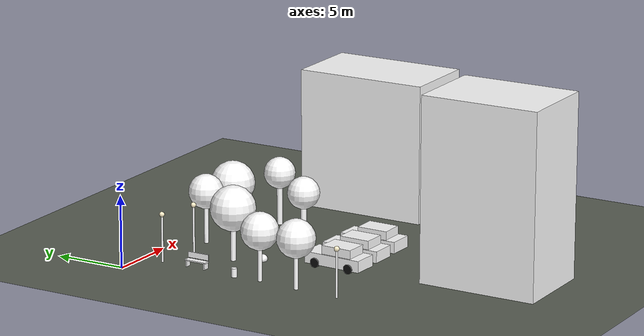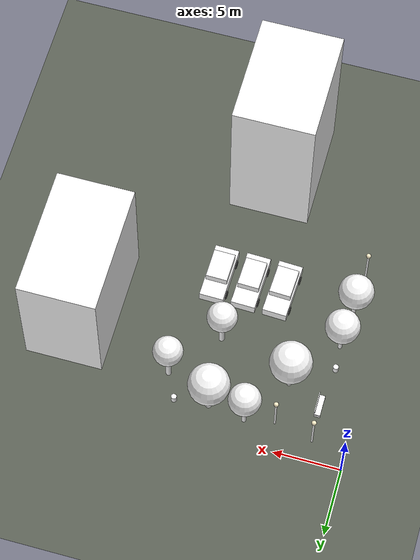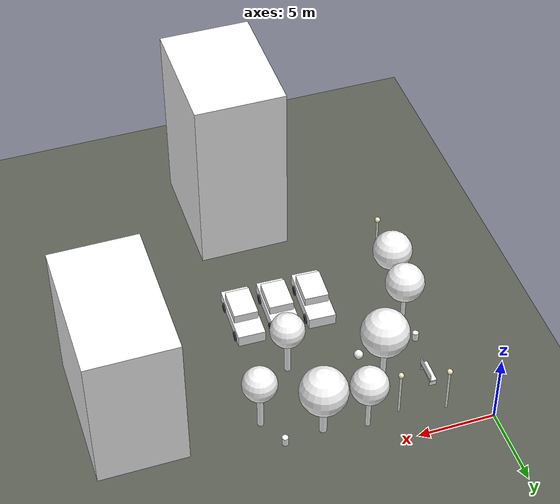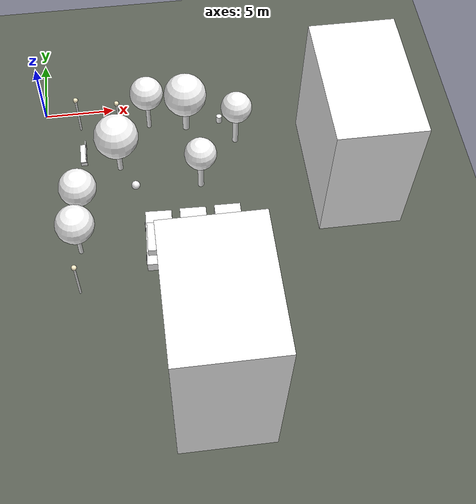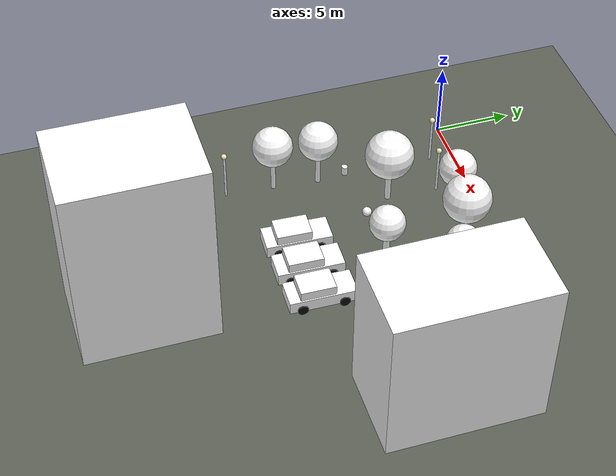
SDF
<sdf version="1.9">
 <world name="park_0">
  <model name="ground_plane">
   <static>true</static>
   <link name="link">
    <collision name="collision">
     <geometry><plane><normal>0 0 1</normal><size>300.000 300.000</size></plane></geometry>
     <surface><friction><ode><mu>1.0</mu><mu2>1.0</mu2></ode></friction></surface>
    </collision>
    <visual name="visual">
     <geometry><plane><normal>0 0 1</normal><size>300.000 300.000</size></plane></geometry>
     <material>
      <ambient>0.350 0.370 0.330 1</ambient>
      <diffuse>0.350 0.370 0.330 1</diffuse>
      <specular>0.08 0.08 0.08 1</specular>
     </material>
    </visual>
   </link>
  </model>
  <model name="building_8">
   <static>true</static>
   <pose>10.240 -22.632 0.000 0.0000 0.0000 0.0000</pose>
   <link name="link">
    <collision name="c0">
     <pose>0.000 0.000 6.358 0.0000 0.0000 0.0000</pose>
     <geometry><box><size>6.011 8.263 12.717</size></box></geometry>
    </collision>
    <visual name="v0">
     <pose>0.000 0.000 6.358 0.0000 0.0000 0.0000</pose>
     <geometry><box><size>6.011 8.263 12.717</size></box></geometry>
     <material>
      <ambient>1.000 1.000 1.000 1</ambient>
      <diffuse>1.000 1.000 1.000 1</diffuse>
      <specular>0.08 0.08 0.08 1</specular>
      <pbr>
       <metal>
        <albedo_map>model://omnivla_textures/materials/textures/facade_red.png</albedo_map>
        <roughness>0.85</roughness>
        <metalness>0.0</metalness>
       </metal>
      </pbr>
     </material>
    </visual>
   </link>
  </model>
  <model name="building_9">
   <static>true</static>
   <pose>21.351 -7.581 0.000 0.0000 0.0000 1.5708</pose>
   <link name="link">
    <collision name="c0">
     <pose>0.000 0.000 4.937 0.0000 0.0000 0.0000</pose>
     <geometry><box><size>9.453 5.703 9.873</size></box></geometry>
    </collision>
    <visual name="v0">
     <pose>0.000 0.000 4.937 0.0000 0.0000 0.0000</pose>
     <geometry><box><size>9.453 5.703 9.873</size></box></geometry>
     <material>
      <ambient>1.000 1.000 1.000 1</ambient>
      <diffuse>1.000 1.000 1.000 1</diffuse>
      <specular>0.08 0.08 0.08 1</specular>
      <pbr>
       <metal>
        <albedo_map>model://omnivla_textures/materials/textures/facade_beige.png</albedo_map>
        <roughness>0.85</roughness>
        <metalness>0.0</metalness>
       </metal>
      </pbr>
     </material>
    </visual>
   </link>
  </model>
  <model name="car_19">
   <static>true</static>
   <pose>7.500 -12.250 0.000 0.0000 0.0000 1.5260</pose>
   <link name="link">
    <collision name="c0">
     <pose>0.000 0.000 0.600 0.0000 0.0000 0.0000</pose>
     <geometry><box><size>4.200 1.800 0.800</size></box></geometry>
    </collision>
    <visual name="v0">
     <pose>0.000 0.000 0.600 0.0000 0.0000 0.0000</pose>
     <geometry><box><size>4.200 1.800 0.800</size></box></geometry>
     <material>
      <ambient>1.000 1.000 1.000 1</ambient>
      <diffuse>1.000 1.000 1.000 1</diffuse>
      <specular>0.08 0.08 0.08 1</specular>
      <pbr>
       <metal>
        <albedo_map>model://omnivla_textures/materials/textures/car_black.png</albedo_map>
        <roughness>0.4</roughness>
        <metalness>0.3</metalness>
       </metal>
      </pbr>
     </material>
    </visual>
    <collision name="c1">
     <pose>-0.300 0.000 1.300 0.0000 0.0000 0.0000</pose>
     <geometry><box><size>2.200 1.600 0.600</size></box></geometry>
    </collision>
    <visual name="v1">
     <pose>-0.300 0.000 1.300 0.0000 0.0000 0.0000</pose>
     <geometry><box><size>2.200 1.600 0.600</size></box></geometry>
     <material>
      <ambient>1.000 1.000 1.000 1</ambient>
      <diffuse>1.000 1.000 1.000 1</diffuse>
      <specular>0.08 0.08 0.08 1</specular>
      <pbr>
       <metal>
        <albedo_map>model://omnivla_textures/materials/textures/car_black.png</albedo_map>
        <roughness>0.4</roughness>
        <metalness>0.3</metalness>
       </metal>
      </pbr>
     </material>
    </visual>
    <collision name="c2">
     <pose>1.300 0.850 0.330 1.5708 0.0000 0.0000</pose>
     <geometry><cylinder><radius>0.330</radius><length>0.250</length></cylinder></geometry>
    </collision>
    <visual name="v2">
     <pose>1.300 0.850 0.330 1.5708 0.0000 0.0000</pose>
     <geometry><cylinder><radius>0.330</radius><length>0.250</length></cylinder></geometry>
     <material>
      <ambient>0.050 0.050 0.050 1</ambient>
      <diffuse>0.050 0.050 0.050 1</diffuse>
      <specular>0.08 0.08 0.08 1</specular>
     </material>
    </visual>
    <collision name="c3">
     <pose>1.300 -0.850 0.330 1.5708 0.0000 0.0000</pose>
     <geometry><cylinder><radius>0.330</radius><length>0.250</length></cylinder></geometry>
    </collision>
    <visual name="v3">
     <pose>1.300 -0.850 0.330 1.5708 0.0000 0.0000</pose>
     <geometry><cylinder><radius>0.330</radius><length>0.250</length></cylinder></geometry>
     <material>
      <ambient>0.050 0.050 0.050 1</ambient>
      <diffuse>0.050 0.050 0.050 1</diffuse>
      <specular>0.08 0.08 0.08 1</specular>
     </material>
    </visual>
    <collision name="c4">
     <pose>-1.300 0.850 0.330 1.5708 0.0000 0.0000</pose>
     <geometry><cylinder><radius>0.330</radius><length>0.250</length></cylinder></geometry>
    </collision>
    <visual name="v4">
     <pose>-1.300 0.850 0.330 1.5708 0.0000 0.0000</pose>
     <geometry><cylinder><radius>0.330</radius><length>0.250</length></cylinder></geometry>
     <material>
      <ambient>0.050 0.050 0.050 1</ambient>
      <diffuse>0.050 0.050 0.050 1</diffuse>
      <specular>0.08 0.08 0.08 1</specular>
     </material>
    </visual>
    <collision name="c5">
     <pose>-1.300 -0.850 0.330 1.5708 0.0000 0.0000</pose>
     <geometry><cylinder><radius>0.330</radius><length>0.250</length></cylinder></geometry>
    </collision>
    <visual name="v5">
     <pose>-1.300 -0.850 0.330 1.5708 0.0000 0.0000</pose>
     <geometry><cylinder><radius>0.330</radius><length>0.250</length></cylinder></geometry>
     <material>
      <ambient>0.050 0.050 0.050 1</ambient>
      <diffuse>0.050 0.050 0.050 1</diffuse>
      <specular>0.08 0.08 0.08 1</specular>
     </material>
    </visual>
   </link>
  </model>
  <model name="car_20">
   <static>true</static>
   <pose>9.900 -12.250 0.000 0.0000 0.0000 1.5406</pose>
   <link name="link">
    <collision name="c0">
     <pose>0.000 0.000 0.600 0.0000 0.0000 0.0000</pose>
     <geometry><box><size>4.200 1.800 0.800</size></box></geometry>
    </collision>
    <visual name="v0">
     <pose>0.000 0.000 0.600 0.0000 0.0000 0.0000</pose>
     <geometry><box><size>4.200 1.800 0.800</size></box></geometry>
     <material>
      <ambient>1.000 1.000 1.000 1</ambient>
      <diffuse>1.000 1.000 1.000 1</diffuse>
      <specular>0.08 0.08 0.08 1</specular>
      <pbr>
       <metal>
        <albedo_map>model://omnivla_textures/materials/textures/car_yellow.png</albedo_map>
        <roughness>0.4</roughness>
        <metalness>0.3</metalness>
       </metal>
      </pbr>
     </material>
    </visual>
    <collision name="c1">
     <pose>-0.300 0.000 1.300 0.0000 0.0000 0.0000</pose>
     <geometry><box><size>2.200 1.600 0.600</size></box></geometry>
    </collision>
    <visual name="v1">
     <pose>-0.300 0.000 1.300 0.0000 0.0000 0.0000</pose>
     <geometry><box><size>2.200 1.600 0.600</size></box></geometry>
     <material>
      <ambient>1.000 1.000 1.000 1</ambient>
      <diffuse>1.000 1.000 1.000 1</diffuse>
      <specular>0.08 0.08 0.08 1</specular>
      <pbr>
       <metal>
        <albedo_map>model://omnivla_textures/materials/textures/car_yellow.png</albedo_map>
        <roughness>0.4</roughness>
        <metalness>0.3</metalness>
       </metal>
      </pbr>
     </material>
    </visual>
    <collision name="c2">
     <pose>1.300 0.850 0.330 1.5708 0.0000 0.0000</pose>
     <geometry><cylinder><radius>0.330</radius><length>0.250</length></cylinder></geometry>
    </collision>
    <visual name="v2">
     <pose>1.300 0.850 0.330 1.5708 0.0000 0.0000</pose>
     <geometry><cylinder><radius>0.330</radius><length>0.250</length></cylinder></geometry>
     <material>
      <ambient>0.050 0.050 0.050 1</ambient>
      <diffuse>0.050 0.050 0.050 1</diffuse>
      <specular>0.08 0.08 0.08 1</specular>
     </material>
    </visual>
    <collision name="c3">
     <pose>1.300 -0.850 0.330 1.5708 0.0000 0.0000</pose>
     <geometry><cylinder><radius>0.330</radius><length>0.250</length></cylinder></geometry>
    </collision>
    <visual name="v3">
     <pose>1.300 -0.850 0.330 1.5708 0.0000 0.0000</pose>
     <geometry><cylinder><radius>0.330</radius><length>0.250</length></cylinder></geometry>
     <material>
      <ambient>0.050 0.050 0.050 1</ambient>
      <diffuse>0.050 0.050 0.050 1</diffuse>
      <specular>0.08 0.08 0.08 1</specular>
     </material>
    </visual>
    <collision name="c4">
     <pose>-1.300 0.850 0.330 1.5708 0.0000 0.0000</pose>
     <geometry><cylinder><radius>0.330</radius><length>0.250</length></cylinder></geometry>
    </collision>
    <visual name="v4">
     <pose>-1.300 0.850 0.330 1.5708 0.0000 0.0000</pose>
     <geometry><cylinder><radius>0.330</radius><length>0.250</length></cylinder></geometry>
     <material>
      <ambient>0.050 0.050 0.050 1</ambient>
      <diffuse>0.050 0.050 0.050 1</diffuse>
      <specular>0.08 0.08 0.08 1</specular>
     </material>
    </visual>
    <collision name="c5">
     <pose>-1.300 -0.850 0.330 1.5708 0.0000 0.0000</pose>
     <geometry><cylinder><radius>0.330</radius><length>0.250</length></cylinder></geometry>
    </collision>
    <visual name="v5">
     <pose>-1.300 -0.850 0.330 1.5708 0.0000 0.0000</pose>
     <geometry><cylinder><radius>0.330</radius><length>0.250</length></cylinder></geometry>
     <material>
      <ambient>0.050 0.050 0.050 1</ambient>
      <diffuse>0.050 0.050 0.050 1</diffuse>
      <specular>0.08 0.08 0.08 1</specular>
     </material>
    </visual>
   </link>
  </model>
  <model name="car_21">
   <static>true</static>
   <pose>12.300 -12.250 0.000 0.0000 0.0000 1.5507</pose>
   <link name="link">
    <collision name="c0">
     <pose>0.000 0.000 0.600 0.0000 0.0000 0.0000</pose>
     <geometry><box><size>4.200 1.800 0.800</size></box></geometry>
    </collision>
    <visual name="v0">
     <pose>0.000 0.000 0.600 0.0000 0.0000 0.0000</pose>
     <geometry><box><size>4.200 1.800 0.800</size></box></geometry>
     <material>
      <ambient>1.000 1.000 1.000 1</ambient>
      <diffuse>1.000 1.000 1.000 1</diffuse>
      <specular>0.08 0.08 0.08 1</specular>
      <pbr>
       <metal>
        <albedo_map>model://omnivla_textures/materials/textures/car_red.png</albedo_map>
        <roughness>0.4</roughness>
        <metalness>0.3</metalness>
       </metal>
      </pbr>
     </material>
    </visual>
    <collision name="c1">
     <pose>-0.300 0.000 1.300 0.0000 0.0000 0.0000</pose>
     <geometry><box><size>2.200 1.600 0.600</size></box></geometry>
    </collision>
    <visual name="v1">
     <pose>-0.300 0.000 1.300 0.0000 0.0000 0.0000</pose>
     <geometry><box><size>2.200 1.600 0.600</size></box></geometry>
     <material>
      <ambient>1.000 1.000 1.000 1</ambient>
      <diffuse>1.000 1.000 1.000 1</diffuse>
      <specular>0.08 0.08 0.08 1</specular>
      <pbr>
       <metal>
        <albedo_map>model://omnivla_textures/materials/textures/car_red.png</albedo_map>
        <roughness>0.4</roughness>
        <metalness>0.3</metalness>
       </metal>
      </pbr>
     </material>
    </visual>
    <collision name="c2">
     <pose>1.300 0.850 0.330 1.5708 0.0000 0.0000</pose>
     <geometry><cylinder><radius>0.330</radius><length>0.250</length></cylinder></geometry>
    </collision>
    <visual name="v2">
     <pose>1.300 0.850 0.330 1.5708 0.0000 0.0000</pose>
     <geometry><cylinder><radius>0.330</radius><length>0.250</length></cylinder></geometry>
     <material>
      <ambient>0.050 0.050 0.050 1</ambient>
      <diffuse>0.050 0.050 0.050 1</diffuse>
      <specular>0.08 0.08 0.08 1</specular>
     </material>
    </visual>
    <collision name="c3">
     <pose>1.300 -0.850 0.330 1.5708 0.0000 0.0000</pose>
     <geometry><cylinder><radius>0.330</radius><length>0.250</length></cylinder></geometry>
    </collision>
    <visual name="v3">
     <pose>1.300 -0.850 0.330 1.5708 0.0000 0.0000</pose>
     <geometry><cylinder><radius>0.330</radius><length>0.250</length></cylinder></geometry>
     <material>
      <ambient>0.050 0.050 0.050 1</ambient>
      <diffuse>0.050 0.050 0.050 1</diffuse>
      <specular>0.08 0.08 0.08 1</specular>
     </material>
    </visual>
    <collision name="c4">
     <pose>-1.300 0.850 0.330 1.5708 0.0000 0.0000</pose>
     <geometry><cylinder><radius>0.330</radius><length>0.250</length></cylinder></geometry>
    </collision>
    <visual name="v4">
     <pose>-1.300 0.850 0.330 1.5708 0.0000 0.0000</pose>
     <geometry><cylinder><radius>0.330</radius><length>0.250</length></cylinder></geometry>
     <material>
      <ambient>0.050 0.050 0.050 1</ambient>
      <diffuse>0.050 0.050 0.050 1</diffuse>
      <specular>0.08 0.08 0.08 1</specular>
     </material>
    </visual>
    <collision name="c5">
     <pose>-1.300 -0.850 0.330 1.5708 0.0000 0.0000</pose>
     <geometry><cylinder><radius>0.330</radius><length>0.250</length></cylinder></geometry>
    </collision>
    <visual name="v5">
     <pose>-1.300 -0.850 0.330 1.5708 0.0000 0.0000</pose>
     <geometry><cylinder><radius>0.330</radius><length>0.250</length></cylinder></geometry>
     <material>
      <ambient>0.050 0.050 0.050 1</ambient>
      <diffuse>0.050 0.050 0.050 1</diffuse>
      <specular>0.08 0.08 0.08 1</specular>
     </material>
    </visual>
   </link>
  </model>
  <model name="tree_34">
   <static>true</static>
   <pose>13.772 -3.918 0.000 0.0000 0.0000 0.3306</pose>
   <link name="link">
    <collision name="c0">
     <pose>0.000 0.000 1.524 0.0000 0.0000 0.0000</pose>
     <geometry><cylinder><radius>0.199</radius><length>3.048</length></cylinder></geometry>
    </collision>
    <visual name="v0">
     <pose>0.000 0.000 1.524 0.0000 0.0000 0.0000</pose>
     <geometry><cylinder><radius>0.199</radius><length>3.048</length></cylinder></geometry>
     <material>
      <ambient>1.000 1.000 1.000 1</ambient>
      <diffuse>1.000 1.000 1.000 1</diffuse>
      <specular>0.08 0.08 0.08 1</specular>
      <pbr>
       <metal>
        <albedo_map>model://omnivla_textures/materials/textures/bark.png</albedo_map>
        <roughness>0.85</roughness>
        <metalness>0.0</metalness>
       </metal>
      </pbr>
     </material>
    </visual>
    <visual name="v1">
     <pose>0.000 0.000 3.709 0.0000 0.0000 0.0000</pose>
     <geometry><sphere><radius>1.102</radius></sphere></geometry>
     <material>
      <ambient>1.000 1.000 1.000 1</ambient>
      <diffuse>1.000 1.000 1.000 1</diffuse>
      <specular>0.08 0.08 0.08 1</specular>
      <pbr>
       <metal>
        <albedo_map>model://omnivla_textures/materials/textures/leaves.png</albedo_map>
        <roughness>0.85</roughness>
        <metalness>0.0</metalness>
       </metal>
      </pbr>
     </material>
    </visual>
   </link>
  </model>
  <model name="tree_41">
   <static>true</static>
   <pose>10.821 -7.586 0.000 0.0000 0.0000 -2.2541</pose>
   <link name="link">
    <collision name="c0">
     <pose>0.000 0.000 1.457 0.0000 0.0000 0.0000</pose>
     <geometry><cylinder><radius>0.207</radius><length>2.915</length></cylinder></geometry>
    </collision>
    <visual name="v0">
     <pose>0.000 0.000 1.457 0.0000 0.0000 0.0000</pose>
     <geometry><cylinder><radius>0.207</radius><length>2.915</length></cylinder></geometry>
     <material>
      <ambient>1.000 1.000 1.000 1</ambient>
      <diffuse>1.000 1.000 1.000 1</diffuse>
      <specular>0.08 0.08 0.08 1</specular>
      <pbr>
       <metal>
        <albedo_map>model://omnivla_textures/materials/textures/bark.png</albedo_map>
        <roughness>0.85</roughness>
        <metalness>0.0</metalness>
       </metal>
      </pbr>
     </material>
    </visual>
    <visual name="v1">
     <pose>0.000 0.000 3.585 0.0000 0.0000 0.0000</pose>
     <geometry><sphere><radius>1.117</radius></sphere></geometry>
     <material>
      <ambient>1.000 1.000 1.000 1</ambient>
      <diffuse>1.000 1.000 1.000 1</diffuse>
      <specular>0.08 0.08 0.08 1</specular>
      <pbr>
       <metal>
        <albedo_map>model://omnivla_textures/materials/textures/leaves.png</albedo_map>
        <roughness>0.85</roughness>
        <metalness>0.0</metalness>
       </metal>
      </pbr>
     </material>
    </visual>
   </link>
  </model>
  <model name="tree_49">
   <static>true</static>
   <pose>5.212 -5.459 0.000 0.0000 0.0000 1.3250</pose>
   <link name="link">
    <collision name="c0">
     <pose>0.000 0.000 1.354 0.0000 0.0000 0.0000</pose>
     <geometry><cylinder><radius>0.186</radius><length>2.707</length></cylinder></geometry>
    </collision>
    <visual name="v0">
     <pose>0.000 0.000 1.354 0.0000 0.0000 0.0000</pose>
     <geometry><cylinder><radius>0.186</radius><length>2.707</length></cylinder></geometry>
     <material>
      <ambient>1.000 1.000 1.000 1</ambient>
      <diffuse>1.000 1.000 1.000 1</diffuse>
      <specular>0.08 0.08 0.08 1</specular>
      <pbr>
       <metal>
        <albedo_map>model://omnivla_textures/materials/textures/bark.png</albedo_map>
        <roughness>0.85</roughness>
        <metalness>0.0</metalness>
       </metal>
      </pbr>
     </material>
    </visual>
    <visual name="v1">
     <pose>0.000 0.000 3.639 0.0000 0.0000 0.0000</pose>
     <geometry><sphere><radius>1.553</radius></sphere></geometry>
     <material>
      <ambient>1.000 1.000 1.000 1</ambient>
      <diffuse>1.000 1.000 1.000 1</diffuse>
      <specular>0.08 0.08 0.08 1</specular>
      <pbr>
       <metal>
        <albedo_map>model://omnivla_textures/materials/textures/leaves.png</albedo_map>
        <roughness>0.85</roughness>
        <metalness>0.0</metalness>
       </metal>
      </pbr>
     </material>
    </visual>
   </link>
  </model>
  <model name="tree_57">
   <static>true</static>
   <pose>10.314 -2.277 0.000 0.0000 0.0000 3.0140</pose>
   <link name="link">
    <collision name="c0">
     <pose>0.000 0.000 1.352 0.0000 0.0000 0.0000</pose>
     <geometry><cylinder><radius>0.237</radius><length>2.704</length></cylinder></geometry>
    </collision>
    <visual name="v0">
     <pose>0.000 0.000 1.352 0.0000 0.0000 0.0000</pose>
     <geometry><cylinder><radius>0.237</radius><length>2.704</length></cylinder></geometry>
     <material>
      <ambient>1.000 1.000 1.000 1</ambient>
      <diffuse>1.000 1.000 1.000 1</diffuse>
      <specular>0.08 0.08 0.08 1</specular>
      <pbr>
       <metal>
        <albedo_map>model://omnivla_textures/materials/textures/bark.png</albedo_map>
        <roughness>0.85</roughness>
        <metalness>0.0</metalness>
       </metal>
      </pbr>
     </material>
    </visual>
    <visual name="v1">
     <pose>0.000 0.000 3.620 0.0000 0.0000 0.0000</pose>
     <geometry><sphere><radius>1.527</radius></sphere></geometry>
     <material>
      <ambient>1.000 1.000 1.000 1</ambient>
      <diffuse>1.000 1.000 1.000 1</diffuse>
      <specular>0.08 0.08 0.08 1</specular>
      <pbr>
       <metal>
        <albedo_map>model://omnivla_textures/materials/textures/leaves.png</albedo_map>
        <roughness>0.85</roughness>
        <metalness>0.0</metalness>
       </metal>
      </pbr>
     </material>
    </visual>
   </link>
  </model>
  <model name="tree_59">
   <static>true</static>
   <pose>2.121 -12.185 0.000 0.0000 0.0000 -0.6825</pose>
   <link name="link">
    <collision name="c0">
     <pose>0.000 0.000 1.338 0.0000 0.0000 0.0000</pose>
     <geometry><cylinder><radius>0.147</radius><length>2.676</length></cylinder></geometry>
    </collision>
    <visual name="v0">
     <pose>0.000 0.000 1.338 0.0000 0.0000 0.0000</pose>
     <geometry><cylinder><radius>0.147</radius><length>2.676</length></cylinder></geometry>
     <material>
      <ambient>1.000 1.000 1.000 1</ambient>
      <diffuse>1.000 1.000 1.000 1</diffuse>
      <specular>0.08 0.08 0.08 1</specular>
      <pbr>
       <metal>
        <albedo_map>model://omnivla_textures/materials/textures/bark.png</albedo_map>
        <roughness>0.85</roughness>
        <metalness>0.0</metalness>
       </metal>
      </pbr>
     </material>
    </visual>
    <visual name="v1">
     <pose>0.000 0.000 3.456 0.0000 0.0000 0.0000</pose>
     <geometry><sphere><radius>1.300</radius></sphere></geometry>
     <material>
      <ambient>1.000 1.000 1.000 1</ambient>
      <diffuse>1.000 1.000 1.000 1</diffuse>
      <specular>0.08 0.08 0.08 1</specular>
      <pbr>
       <metal>
        <albedo_map>model://omnivla_textures/materials/textures/leaves.png</albedo_map>
        <roughness>0.85</roughness>
        <metalness>0.0</metalness>
       </metal>
      </pbr>
     </material>
    </visual>
   </link>
  </model>
  <model name="tree_63">
   <static>true</static>
   <pose>7.591 -1.823 0.000 0.0000 0.0000 0.5553</pose>
   <link name="link">
    <collision name="c0">
     <pose>0.000 0.000 1.463 0.0000 0.0000 0.0000</pose>
     <geometry><cylinder><radius>0.153</radius><length>2.926</length></cylinder></geometry>
    </collision>
    <visual name="v0">
     <pose>0.000 0.000 1.463 0.0000 0.0000 0.0000</pose>
     <geometry><cylinder><radius>0.153</radius><length>2.926</length></cylinder></geometry>
     <material>
      <ambient>1.000 1.000 1.000 1</ambient>
      <diffuse>1.000 1.000 1.000 1</diffuse>
      <specular>0.08 0.08 0.08 1</specular>
      <pbr>
       <metal>
        <albedo_map>model://omnivla_textures/materials/textures/bark.png</albedo_map>
        <roughness>0.85</roughness>
        <metalness>0.0</metalness>
       </metal>
      </pbr>
     </material>
    </visual>
    <visual name="v1">
     <pose>0.000 0.000 3.644 0.0000 0.0000 0.0000</pose>
     <geometry><sphere><radius>1.196</radius></sphere></geometry>
     <material>
      <ambient>1.000 1.000 1.000 1</ambient>
      <diffuse>1.000 1.000 1.000 1</diffuse>
      <specular>0.08 0.08 0.08 1</specular>
      <pbr>
       <metal>
        <albedo_map>model://omnivla_textures/materials/textures/leaves.png</albedo_map>
        <roughness>0.85</roughness>
        <metalness>0.0</metalness>
       </metal>
      </pbr>
     </material>
    </visual>
   </link>
  </model>
  <model name="tree_72">
   <static>true</static>
   <pose>2.399 -9.267 0.000 0.0000 0.0000 2.9879</pose>
   <link name="link">
    <collision name="c0">
     <pose>0.000 0.000 1.326 0.0000 0.0000 0.0000</pose>
     <geometry><cylinder><radius>0.151</radius><length>2.652</length></cylinder></geometry>
    </collision>
    <visual name="v0">
     <pose>0.000 0.000 1.326 0.0000 0.0000 0.0000</pose>
     <geometry><cylinder><radius>0.151</radius><length>2.652</length></cylinder></geometry>
     <material>
      <ambient>1.000 1.000 1.000 1</ambient>
      <diffuse>1.000 1.000 1.000 1</diffuse>
      <specular>0.08 0.08 0.08 1</specular>
      <pbr>
       <metal>
        <albedo_map>model://omnivla_textures/materials/textures/bark.png</albedo_map>
        <roughness>0.85</roughness>
        <metalness>0.0</metalness>
       </metal>
      </pbr>
     </material>
    </visual>
    <visual name="v1">
     <pose>0.000 0.000 3.418 0.0000 0.0000 0.0000</pose>
     <geometry><sphere><radius>1.276</radius></sphere></geometry>
     <material>
      <ambient>1.000 1.000 1.000 1</ambient>
      <diffuse>1.000 1.000 1.000 1</diffuse>
      <specular>0.08 0.08 0.08 1</specular>
      <pbr>
       <metal>
        <albedo_map>model://omnivla_textures/materials/textures/leaves.png</albedo_map>
        <roughness>0.85</roughness>
        <metalness>0.0</metalness>
       </metal>
      </pbr>
     </material>
    </visual>
   </link>
  </model>
  <model name="bench_89">
   <static>true</static>
   <pose>2.649 -4.198 0.000 0.0000 0.0000 1.5708</pose>
   <link name="link">
    <collision name="c0">
     <pose>0.000 0.000 0.450 0.0000 0.0000 0.0000</pose>
     <geometry><box><size>1.600 0.450 0.080</size></box></geometry>
    </collision>
    <visual name="v0">
     <pose>0.000 0.000 0.450 0.0000 0.0000 0.0000</pose>
     <geometry><box><size>1.600 0.450 0.080</size></box></geometry>
     <material>
      <ambient>1.000 1.000 1.000 1</ambient>
      <diffuse>1.000 1.000 1.000 1</diffuse>
      <specular>0.08 0.08 0.08 1</specular>
      <pbr>
       <metal>
        <albedo_map>model://omnivla_textures/materials/textures/wood_floor.png</albedo_map>
        <roughness>0.85</roughness>
        <metalness>0.0</metalness>
       </metal>
      </pbr>
     </material>
    </visual>
    <collision name="c1">
     <pose>0.000 -0.200 0.750 0.0000 0.0000 0.0000</pose>
     <geometry><box><size>1.600 0.060 0.400</size></box></geometry>
    </collision>
    <visual name="v1">
     <pose>0.000 -0.200 0.750 0.0000 0.0000 0.0000</pose>
     <geometry><box><size>1.600 0.060 0.400</size></box></geometry>
     <material>
      <ambient>1.000 1.000 1.000 1</ambient>
      <diffuse>1.000 1.000 1.000 1</diffuse>
      <specular>0.08 0.08 0.08 1</specular>
      <pbr>
       <metal>
        <albedo_map>model://omnivla_textures/materials/textures/wood_floor.png</albedo_map>
        <roughness>0.85</roughness>
        <metalness>0.0</metalness>
       </metal>
      </pbr>
     </material>
    </visual>
    <collision name="c2">
     <pose>0.700 0.000 0.225 0.0000 0.0000 0.0000</pose>
     <geometry><box><size>0.080 0.450 0.450</size></box></geometry>
    </collision>
    <visual name="v2">
     <pose>0.700 0.000 0.225 0.0000 0.0000 0.0000</pose>
     <geometry><box><size>0.080 0.450 0.450</size></box></geometry>
     <material>
      <ambient>1.000 1.000 1.000 1</ambient>
      <diffuse>1.000 1.000 1.000 1</diffuse>
      <specular>0.08 0.08 0.08 1</specular>
      <pbr>
       <metal>
        <albedo_map>model://omnivla_textures/materials/textures/metal.png</albedo_map>
        <roughness>0.85</roughness>
        <metalness>0.0</metalness>
       </metal>
      </pbr>
     </material>
    </visual>
    <collision name="c3">
     <pose>-0.700 0.000 0.225 0.0000 0.0000 0.0000</pose>
     <geometry><box><size>0.080 0.450 0.450</size></box></geometry>
    </collision>
    <visual name="v3">
     <pose>-0.700 0.000 0.225 0.0000 0.0000 0.0000</pose>
     <geometry><box><size>0.080 0.450 0.450</size></box></geometry>
     <material>
      <ambient>1.000 1.000 1.000 1</ambient>
      <diffuse>1.000 1.000 1.000 1</diffuse>
      <specular>0.08 0.08 0.08 1</specular>
      <pbr>
       <metal>
        <albedo_map>model://omnivla_textures/materials/textures/metal.png</albedo_map>
        <roughness>0.85</roughness>
        <metalness>0.0</metalness>
       </metal>
      </pbr>
     </material>
    </visual>
   </link>
  </model>
  <model name="lamp_120">
   <static>true</static>
   <pose>5.415 -2.203 0.000 0.0000 0.0000 0.0000</pose>
   <link name="link">
    <collision name="c0">
     <pose>0.000 0.000 1.600 0.0000 0.0000 0.0000</pose>
     <geometry><cylinder><radius>0.070</radius><length>3.200</length></cylinder></geometry>
    </collision>
    <visual name="v0">
     <pose>0.000 0.000 1.600 0.0000 0.0000 0.0000</pose>
     <geometry><cylinder><radius>0.070</radius><length>3.200</length></cylinder></geometry>
     <material>
      <ambient>1.000 1.000 1.000 1</ambient>
      <diffuse>1.000 1.000 1.000 1</diffuse>
      <specular>0.08 0.08 0.08 1</specular>
      <pbr>
       <metal>
        <albedo_map>model://omnivla_textures/materials/textures/metal.png</albedo_map>
        <roughness>0.85</roughness>
        <metalness>0.0</metalness>
       </metal>
      </pbr>
     </material>
    </visual>
    <visual name="v1">
     <pose>0.000 0.000 3.300 0.0000 0.0000 0.0000</pose>
     <geometry><sphere><radius>0.180</radius></sphere></geometry>
     <material>
      <ambient>1.000 0.950 0.800 1</ambient>
      <diffuse>1.000 0.950 0.800 1</diffuse>
      <specular>0.08 0.08 0.08 1</specular>
     </material>
    </visual>
   </link>
  </model>
  <model name="lamp_127">
   <static>true</static>
   <pose>2.532 -1.566 0.000 0.0000 0.0000 1.5708</pose>
   <link name="link">
    <collision name="c0">
     <pose>0.000 0.000 1.600 0.0000 0.0000 0.0000</pose>
     <geometry><cylinder><radius>0.070</radius><length>3.200</length></cylinder></geometry>
    </collision>
    <visual name="v0">
     <pose>0.000 0.000 1.600 0.0000 0.0000 0.0000</pose>
     <geometry><cylinder><radius>0.070</radius><length>3.200</length></cylinder></geometry>
     <material>
      <ambient>1.000 1.000 1.000 1</ambient>
      <diffuse>1.000 1.000 1.000 1</diffuse>
      <specular>0.08 0.08 0.08 1</specular>
      <pbr>
       <metal>
        <albedo_map>model://omnivla_textures/materials/textures/metal.png</albedo_map>
        <roughness>0.85</roughness>
        <metalness>0.0</metalness>
       </metal>
      </pbr>
     </material>
    </visual>
    <visual name="v1">
     <pose>0.000 0.000 3.300 0.0000 0.0000 0.0000</pose>
     <geometry><sphere><radius>0.180</radius></sphere></geometry>
     <material>
      <ambient>1.000 0.950 0.800 1</ambient>
      <diffuse>1.000 0.950 0.800 1</diffuse>
      <specular>0.08 0.08 0.08 1</specular>
     </material>
    </visual>
   </link>
  </model>
  <model name="lamp_197">
   <static>true</static>
   <pose>1.962 -15.311 0.000 0.0000 0.0000 1.5708</pose>
   <link name="link">
    <collision name="c0">
     <pose>0.000 0.000 1.600 0.0000 0.0000 0.0000</pose>
     <geometry><cylinder><radius>0.070</radius><length>3.200</length></cylinder></geometry>
    </collision>
    <visual name="v0">
     <pose>0.000 0.000 1.600 0.0000 0.0000 0.0000</pose>
     <geometry><cylinder><radius>0.070</radius><length>3.200</length></cylinder></geometry>
     <material>
      <ambient>1.000 1.000 1.000 1</ambient>
      <diffuse>1.000 1.000 1.000 1</diffuse>
      <specular>0.08 0.08 0.08 1</specular>
      <pbr>
       <metal>
        <albedo_map>model://omnivla_textures/materials/textures/metal.png</albedo_map>
        <roughness>0.85</roughness>
        <metalness>0.0</metalness>
       </metal>
      </pbr>
     </material>
    </visual>
    <visual name="v1">
     <pose>0.000 0.000 3.300 0.0000 0.0000 0.0000</pose>
     <geometry><sphere><radius>0.180</radius></sphere></geometry>
     <material>
      <ambient>1.000 0.950 0.800 1</ambient>
      <diffuse>1.000 0.950 0.800 1</diffuse>
      <specular>0.08 0.08 0.08 1</specular>
     </material>
    </visual>
   </link>
  </model>
  <model name="bin_239">
   <static>true</static>
   <pose>2.251 -7.373 0.000 0.0000 0.0000 1.5708</pose>
   <link name="link">
    <collision name="c0">
     <pose>0.000 0.000 0.300 0.0000 0.0000 0.0000</pose>
     <geometry><cylinder><radius>0.200</radius><length>0.600</length></cylinder></geometry>
    </collision>
    <visual name="v0">
     <pose>0.000 0.000 0.300 0.0000 0.0000 0.0000</pose>
     <geometry><cylinder><radius>0.200</radius><length>0.600</length></cylinder></geometry>
     <material>
      <ambient>1.000 1.000 1.000 1</ambient>
      <diffuse>1.000 1.000 1.000 1</diffuse>
      <specular>0.08 0.08 0.08 1</specular>
      <pbr>
       <metal>
        <albedo_map>model://omnivla_textures/materials/textures/car_yellow.png</albedo_map>
        <roughness>0.85</roughness>
        <metalness>0.0</metalness>
       </metal>
      </pbr>
     </material>
    </visual>
   </link>
  </model>
  <model name="bin_267">
   <static>true</static>
   <pose>12.818 -1.992 0.000 0.0000 0.0000 0.0000</pose>
   <link name="link">
    <collision name="c0">
     <pose>0.000 0.000 0.300 0.0000 0.0000 0.0000</pose>
     <geometry><cylinder><radius>0.200</radius><length>0.600</length></cylinder></geometry>
    </collision>
    <visual name="v0">
     <pose>0.000 0.000 0.300 0.0000 0.0000 0.0000</pose>
     <geometry><cylinder><radius>0.200</radius><length>0.600</length></cylinder></geometry>
     <material>
      <ambient>1.000 1.000 1.000 1</ambient>
      <diffuse>1.000 1.000 1.000 1</diffuse>
      <specular>0.08 0.08 0.08 1</specular>
      <pbr>
       <metal>
        <albedo_map>model://omnivla_textures/materials/textures/metal.png</albedo_map>
        <roughness>0.85</roughness>
        <metalness>0.0</metalness>
       </metal>
      </pbr>
     </material>
    </visual>
   </link>
  </model>
  <model name="rock_441">
   <static>true</static>
   <pose>6.200 -7.182 0.000 0.0000 0.0000 0.1740</pose>
   <link name="link">
    <collision name="c0">
     <pose>0.000 0.000 0.122 0.0000 0.0000 0.0000</pose>
     <geometry><sphere><radius>0.304</radius></sphere></geometry>
    </collision>
    <visual name="v0">
     <pose>0.000 0.000 0.122 0.0000 0.0000 0.0000</pose>
     <geometry><sphere><radius>0.304</radius></sphere></geometry>
     <material>
      <ambient>1.000 1.000 1.000 1</ambient>
      <diffuse>1.000 1.000 1.000 1</diffuse>
      <specular>0.08 0.08 0.08 1</specular>
      <pbr>
       <metal>
        <albedo_map>model://omnivla_textures/materials/textures/rock.png</albedo_map>
        <roughness>0.85</roughness>
        <metalness>0.0</metalness>
       </metal>
      </pbr>
     </material>
    </visual>
   </link>
  </model>
 </world>
</sdf>
